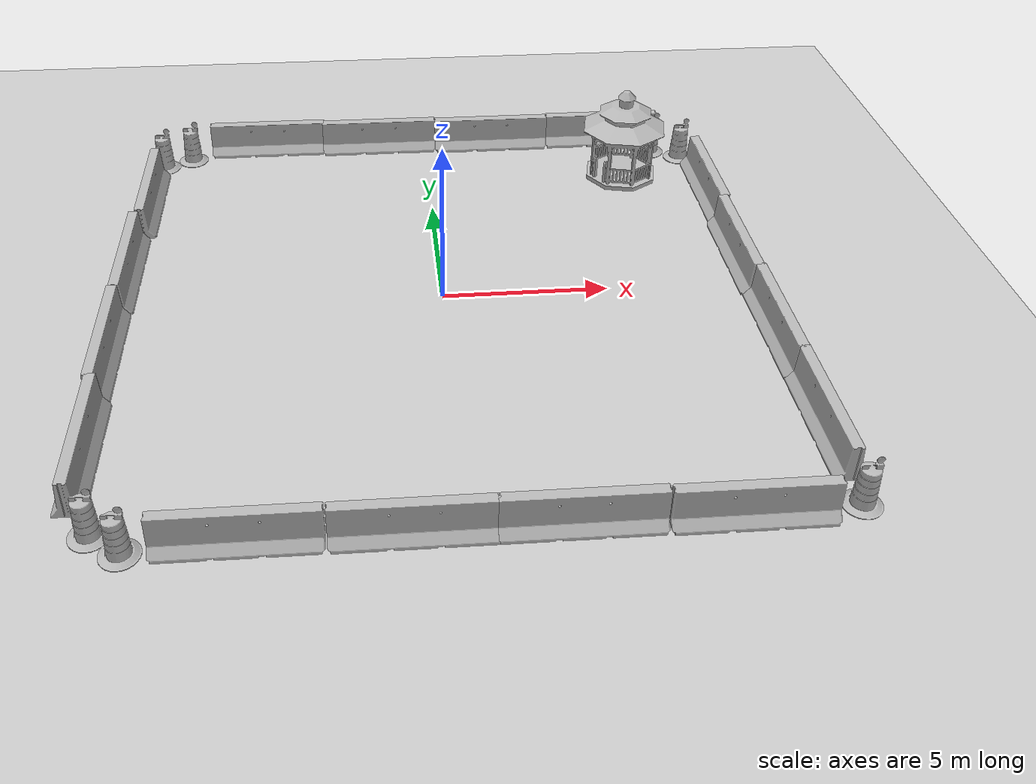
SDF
<sdf version="1.7">
 <world name="default">
  <light name="sun" type="directional">
   <pose>0 0 10 0 -0 0</pose>
   <diffuse>0.8 0.8 0.8 1</diffuse>
   <specular>0.2 0.2 0.2 1</specular>
   <attenuation>
    <range>1000</range>
    <constant>0.9</constant>
    <linear>0.01</linear>
    <quadratic>0.001</quadratic>
   </attenuation>
   <direction>-0.5 0.1 -0.9</direction>
   <spot><inner_angle>0</inner_angle><outer_angle>0</outer_angle><falloff>0</falloff></spot>
  </light>
  <model name="ground_plane">
   <static>1</static>
   <link name="link">
    <collision name="collision">
     <geometry><plane><normal>0 0 1</normal><size>100 100</size></plane></geometry>
     <surface><friction><ode><mu>100</mu><mu2>50</mu2></ode></friction></surface>
    </collision>
    <visual name="visual">
     <cast_shadows>0</cast_shadows>
     <geometry><plane><normal>0 0 1</normal><size>100 100</size></plane></geometry>
     <material>
      <script><uri>file://media/materials/scripts/gazebo.material</uri><name>Gazebo/Grey</name></script>
     </material>
    </visual>
   </link>
  </model>
  <gravity>0 0 -9.8</gravity>
  <magnetic_field>6e-06 2.3e-05 -4.2e-05</magnetic_field>
  <atmosphere type="adiabatic"/>
  <physics name="default_physics" default="0" type="ode">
   <max_step_size>0.001</max_step_size>
   <real_time_factor>1</real_time_factor>
   <real_time_update_rate>1000</real_time_update_rate>
  </physics>
  <scene><ambient>0.4 0.4 0.4 1</ambient><background>0.7 0.7 0.7 1</background><shadows>1</shadows></scene>
  <spherical_coordinates>
   <surface_model>EARTH_WGS84</surface_model>
   <latitude_deg>0</latitude_deg>
   <longitude_deg>0</longitude_deg>
   <elevation>0</elevation>
   <heading_deg>0</heading_deg>
  </spherical_coordinates>
  <model name="jersey_barrier">
   <static>1</static>
   <link name="link">
    <visual name="visual">
     <geometry><mesh><uri>model://jersey_barrier/meshes/jersey_barrier.dae</uri></mesh></geometry>
    </visual>
    <collision name="upright">
     <pose>0 0 0.5715 0 -0 0</pose>
     <geometry><box><size>4.06542 0.3063 1.143</size></box></geometry>
    </collision>
    <collision name="base">
     <pose>0 0 0.032258 0 -0 0</pose>
     <geometry><box><size>4.06542 0.8107 0.064516</size></box></geometry>
    </collision>
    <collision name="base2">
     <pose>0 0 0.1 0 -0 0</pose>
     <geometry><box><size>4.06542 0.65 0.1</size></box></geometry>
    </collision>
    <collision name="base3">
     <pose>0 0 0.2 0 -0 0</pose>
     <geometry><box><size>4.06542 0.5 0.1</size></box></geometry>
    </collision>
    <collision name="left-angle">
     <pose>0 -0.224 0.2401 0.9 -0 0</pose>
     <geometry><box><size>4.06542 0.5 0.064516</size></box></geometry>
    </collision>
    <collision name="right-angle">
     <pose>0 0.224 0.2401 -0.9 0 0</pose>
     <geometry><box><size>4.06542 0.5 0.064516</size></box></geometry>
    </collision>
   </link>
   <pose>-5.65677 9.4608 0 0 -0 0</pose>
  </model>
  <model name="jersey_barrier_clone">
   <static>1</static>
   <link name="link">
    <visual name="visual">
     <geometry><mesh><uri>model://jersey_barrier/meshes/jersey_barrier.dae</uri></mesh></geometry>
    </visual>
    <collision name="upright">
     <pose>0 0 0.5715 0 -0 0</pose>
     <geometry><box><size>4.06542 0.3063 1.143</size></box></geometry>
    </collision>
    <collision name="base">
     <pose>0 0 0.032258 0 -0 0</pose>
     <geometry><box><size>4.06542 0.8107 0.064516</size></box></geometry>
    </collision>
    <collision name="base2">
     <pose>0 0 0.1 0 -0 0</pose>
     <geometry><box><size>4.06542 0.65 0.1</size></box></geometry>
    </collision>
    <collision name="base3">
     <pose>0 0 0.2 0 -0 0</pose>
     <geometry><box><size>4.06542 0.5 0.1</size></box></geometry>
    </collision>
    <collision name="left-angle">
     <pose>0 -0.224 0.2401 0.9 -0 0</pose>
     <geometry><box><size>4.06542 0.5 0.064516</size></box></geometry>
    </collision>
    <collision name="right-angle">
     <pose>0 0.224 0.2401 -0.9 0 0</pose>
     <geometry><box><size>4.06542 0.5 0.064516</size></box></geometry>
    </collision>
   </link>
   <pose>-1.65987 9.36075 0 0 -0 0</pose>
  </model>
  <model name="jersey_barrier_clone_0">
   <static>1</static>
   <link name="link">
    <visual name="visual">
     <geometry><mesh><uri>model://jersey_barrier/meshes/jersey_barrier.dae</uri></mesh></geometry>
    </visual>
    <collision name="upright">
     <pose>0 0 0.5715 0 -0 0</pose>
     <geometry><box><size>4.06542 0.3063 1.143</size></box></geometry>
    </collision>
    <collision name="base">
     <pose>0 0 0.032258 0 -0 0</pose>
     <geometry><box><size>4.06542 0.8107 0.064516</size></box></geometry>
    </collision>
    <collision name="base2">
     <pose>0 0 0.1 0 -0 0</pose>
     <geometry><box><size>4.06542 0.65 0.1</size></box></geometry>
    </collision>
    <collision name="base3">
     <pose>0 0 0.2 0 -0 0</pose>
     <geometry><box><size>4.06542 0.5 0.1</size></box></geometry>
    </collision>
    <collision name="left-angle">
     <pose>0 -0.224 0.2401 0.9 -0 0</pose>
     <geometry><box><size>4.06542 0.5 0.064516</size></box></geometry>
    </collision>
    <collision name="right-angle">
     <pose>0 0.224 0.2401 -0.9 0 0</pose>
     <geometry><box><size>4.06542 0.5 0.064516</size></box></geometry>
    </collision>
   </link>
   <pose>2.39773 9.29085 0 0 -0 0</pose>
  </model>
  <model name="jersey_barrier_clone_1">
   <static>1</static>
   <link name="link">
    <visual name="visual">
     <geometry><mesh><uri>model://jersey_barrier/meshes/jersey_barrier.dae</uri></mesh></geometry>
    </visual>
    <collision name="upright">
     <pose>0 0 0.5715 0 -0 0</pose>
     <geometry><box><size>4.06542 0.3063 1.143</size></box></geometry>
    </collision>
    <collision name="base">
     <pose>0 0 0.032258 0 -0 0</pose>
     <geometry><box><size>4.06542 0.8107 0.064516</size></box></geometry>
    </collision>
    <collision name="base2">
     <pose>0 0 0.1 0 -0 0</pose>
     <geometry><box><size>4.06542 0.65 0.1</size></box></geometry>
    </collision>
    <collision name="base3">
     <pose>0 0 0.2 0 -0 0</pose>
     <geometry><box><size>4.06542 0.5 0.1</size></box></geometry>
    </collision>
    <collision name="left-angle">
     <pose>0 -0.224 0.2401 0.9 -0 0</pose>
     <geometry><box><size>4.06542 0.5 0.064516</size></box></geometry>
    </collision>
    <collision name="right-angle">
     <pose>0 0.224 0.2401 -0.9 0 0</pose>
     <geometry><box><size>4.06542 0.5 0.064516</size></box></geometry>
    </collision>
   </link>
   <pose>6.45464 9.33993 0 0 -0 0</pose>
  </model>
  <model name="jersey_barrier_clone_3">
   <static>1</static>
   <link name="link">
    <visual name="visual">
     <geometry><mesh><uri>model://jersey_barrier/meshes/jersey_barrier.dae</uri></mesh></geometry>
    </visual>
    <collision name="upright">
     <pose>0 0 0.5715 0 -0 0</pose>
     <geometry><box><size>4.06542 0.3063 1.143</size></box></geometry>
    </collision>
    <collision name="base">
     <pose>0 0 0.032258 0 -0 0</pose>
     <geometry><box><size>4.06542 0.8107 0.064516</size></box></geometry>
    </collision>
    <collision name="base2">
     <pose>0 0 0.1 0 -0 0</pose>
     <geometry><box><size>4.06542 0.65 0.1</size></box></geometry>
    </collision>
    <collision name="base3">
     <pose>0 0 0.2 0 -0 0</pose>
     <geometry><box><size>4.06542 0.5 0.1</size></box></geometry>
    </collision>
    <collision name="left-angle">
     <pose>0 -0.224 0.2401 0.9 -0 0</pose>
     <geometry><box><size>4.06542 0.5 0.064516</size></box></geometry>
    </collision>
    <collision name="right-angle">
     <pose>0 0.224 0.2401 -0.9 0 0</pose>
     <geometry><box><size>4.06542 0.5 0.064516</size></box></geometry>
    </collision>
   </link>
   <pose>9.44656 5.35522 0 0 0 -1.56865</pose>
  </model>
  <model name="jersey_barrier_clone_3_clone">
   <static>1</static>
   <link name="link">
    <visual name="visual">
     <geometry><mesh><uri>model://jersey_barrier/meshes/jersey_barrier.dae</uri></mesh></geometry>
    </visual>
    <collision name="upright">
     <pose>0 0 0.5715 0 -0 0</pose>
     <geometry><box><size>4.06542 0.3063 1.143</size></box></geometry>
    </collision>
    <collision name="base">
     <pose>0 0 0.032258 0 -0 0</pose>
     <geometry><box><size>4.06542 0.8107 0.064516</size></box></geometry>
    </collision>
    <collision name="base2">
     <pose>0 0 0.1 0 -0 0</pose>
     <geometry><box><size>4.06542 0.65 0.1</size></box></geometry>
    </collision>
    <collision name="base3">
     <pose>0 0 0.2 0 -0 0</pose>
     <geometry><box><size>4.06542 0.5 0.1</size></box></geometry>
    </collision>
    <collision name="left-angle">
     <pose>0 -0.224 0.2401 0.9 -0 0</pose>
     <geometry><box><size>4.06542 0.5 0.064516</size></box></geometry>
    </collision>
    <collision name="right-angle">
     <pose>0 0.224 0.2401 -0.9 0 0</pose>
     <geometry><box><size>4.06542 0.5 0.064516</size></box></geometry>
    </collision>
   </link>
   <pose>9.3727 1.33119 0 0 0 -1.56865</pose>
  </model>
  <model name="jersey_barrier_clone_3_clone_0">
   <static>1</static>
   <link name="link">
    <visual name="visual">
     <geometry><mesh><uri>model://jersey_barrier/meshes/jersey_barrier.dae</uri></mesh></geometry>
    </visual>
    <collision name="upright">
     <pose>0 0 0.5715 0 -0 0</pose>
     <geometry><box><size>4.06542 0.3063 1.143</size></box></geometry>
    </collision>
    <collision name="base">
     <pose>0 0 0.032258 0 -0 0</pose>
     <geometry><box><size>4.06542 0.8107 0.064516</size></box></geometry>
    </collision>
    <collision name="base2">
     <pose>0 0 0.1 0 -0 0</pose>
     <geometry><box><size>4.06542 0.65 0.1</size></box></geometry>
    </collision>
    <collision name="base3">
     <pose>0 0 0.2 0 -0 0</pose>
     <geometry><box><size>4.06542 0.5 0.1</size></box></geometry>
    </collision>
    <collision name="left-angle">
     <pose>0 -0.224 0.2401 0.9 -0 0</pose>
     <geometry><box><size>4.06542 0.5 0.064516</size></box></geometry>
    </collision>
    <collision name="right-angle">
     <pose>0 0.224 0.2401 -0.9 0 0</pose>
     <geometry><box><size>4.06542 0.5 0.064516</size></box></geometry>
    </collision>
   </link>
   <pose>9.4315 -2.6268 0 0 0 -1.56865</pose>
  </model>
  <model name="jersey_barrier_clone_3_clone_1">
   <static>1</static>
   <link name="link">
    <visual name="visual">
     <geometry><mesh><uri>model://jersey_barrier/meshes/jersey_barrier.dae</uri></mesh></geometry>
    </visual>
    <collision name="upright">
     <pose>0 0 0.5715 0 -0 0</pose>
     <geometry><box><size>4.06542 0.3063 1.143</size></box></geometry>
    </collision>
    <collision name="base">
     <pose>0 0 0.032258 0 -0 0</pose>
     <geometry><box><size>4.06542 0.8107 0.064516</size></box></geometry>
    </collision>
    <collision name="base2">
     <pose>0 0 0.1 0 -0 0</pose>
     <geometry><box><size>4.06542 0.65 0.1</size></box></geometry>
    </collision>
    <collision name="base3">
     <pose>0 0 0.2 0 -0 0</pose>
     <geometry><box><size>4.06542 0.5 0.1</size></box></geometry>
    </collision>
    <collision name="left-angle">
     <pose>0 -0.224 0.2401 0.9 -0 0</pose>
     <geometry><box><size>4.06542 0.5 0.064516</size></box></geometry>
    </collision>
    <collision name="right-angle">
     <pose>0 0.224 0.2401 -0.9 0 0</pose>
     <geometry><box><size>4.06542 0.5 0.064516</size></box></geometry>
    </collision>
   </link>
   <pose>9.44969 -6.53485 0 0 0 -1.56865</pose>
  </model>
  <model name="jersey_barrier_clone_2_clone">
   <static>1</static>
   <link name="link">
    <visual name="visual">
     <geometry><mesh><uri>model://jersey_barrier/meshes/jersey_barrier.dae</uri></mesh></geometry>
    </visual>
    <collision name="upright">
     <pose>0 0 0.5715 0 -0 0</pose>
     <geometry><box><size>4.06542 0.3063 1.143</size></box></geometry>
    </collision>
    <collision name="base">
     <pose>0 0 0.032258 0 -0 0</pose>
     <geometry><box><size>4.06542 0.8107 0.064516</size></box></geometry>
    </collision>
    <collision name="base2">
     <pose>0 0 0.1 0 -0 0</pose>
     <geometry><box><size>4.06542 0.65 0.1</size></box></geometry>
    </collision>
    <collision name="base3">
     <pose>0 0 0.2 0 -0 0</pose>
     <geometry><box><size>4.06542 0.5 0.1</size></box></geometry>
    </collision>
    <collision name="left-angle">
     <pose>0 -0.224 0.2401 0.9 -0 0</pose>
     <geometry><box><size>4.06542 0.5 0.064516</size></box></geometry>
    </collision>
    <collision name="right-angle">
     <pose>0 0.224 0.2401 -0.9 0 0</pose>
     <geometry><box><size>4.06542 0.5 0.064516</size></box></geometry>
    </collision>
   </link>
   <pose>6.70657 -9.54347 0 0 -0 0</pose>
  </model>
  <model name="jersey_barrier_clone_2_clone_0">
   <static>1</static>
   <link name="link">
    <visual name="visual">
     <geometry><mesh><uri>model://jersey_barrier/meshes/jersey_barrier.dae</uri></mesh></geometry>
    </visual>
    <collision name="upright">
     <pose>0 0 0.5715 0 -0 0</pose>
     <geometry><box><size>4.06542 0.3063 1.143</size></box></geometry>
    </collision>
    <collision name="base">
     <pose>0 0 0.032258 0 -0 0</pose>
     <geometry><box><size>4.06542 0.8107 0.064516</size></box></geometry>
    </collision>
    <collision name="base2">
     <pose>0 0 0.1 0 -0 0</pose>
     <geometry><box><size>4.06542 0.65 0.1</size></box></geometry>
    </collision>
    <collision name="base3">
     <pose>0 0 0.2 0 -0 0</pose>
     <geometry><box><size>4.06542 0.5 0.1</size></box></geometry>
    </collision>
    <collision name="left-angle">
     <pose>0 -0.224 0.2401 0.9 -0 0</pose>
     <geometry><box><size>4.06542 0.5 0.064516</size></box></geometry>
    </collision>
    <collision name="right-angle">
     <pose>0 0.224 0.2401 -0.9 0 0</pose>
     <geometry><box><size>4.06542 0.5 0.064516</size></box></geometry>
    </collision>
   </link>
   <pose>2.59616 -9.50928 0 0 -0 0</pose>
  </model>
  <model name="jersey_barrier_clone_2_clone_1">
   <static>1</static>
   <link name="link">
    <visual name="visual">
     <geometry><mesh><uri>model://jersey_barrier/meshes/jersey_barrier.dae</uri></mesh></geometry>
    </visual>
    <collision name="upright">
     <pose>0 0 0.5715 0 -0 0</pose>
     <geometry><box><size>4.06542 0.3063 1.143</size></box></geometry>
    </collision>
    <collision name="base">
     <pose>0 0 0.032258 0 -0 0</pose>
     <geometry><box><size>4.06542 0.8107 0.064516</size></box></geometry>
    </collision>
    <collision name="base2">
     <pose>0 0 0.1 0 -0 0</pose>
     <geometry><box><size>4.06542 0.65 0.1</size></box></geometry>
    </collision>
    <collision name="base3">
     <pose>0 0 0.2 0 -0 0</pose>
     <geometry><box><size>4.06542 0.5 0.1</size></box></geometry>
    </collision>
    <collision name="left-angle">
     <pose>0 -0.224 0.2401 0.9 -0 0</pose>
     <geometry><box><size>4.06542 0.5 0.064516</size></box></geometry>
    </collision>
    <collision name="right-angle">
     <pose>0 0.224 0.2401 -0.9 0 0</pose>
     <geometry><box><size>4.06542 0.5 0.064516</size></box></geometry>
    </collision>
   </link>
   <pose>-1.33414 -9.50852 0 0 -0 0</pose>
  </model>
  <model name="jersey_barrier_clone_2_clone_2">
   <static>1</static>
   <link name="link">
    <visual name="visual">
     <geometry><mesh><uri>model://jersey_barrier/meshes/jersey_barrier.dae</uri></mesh></geometry>
    </visual>
    <collision name="upright">
     <pose>0 0 0.5715 0 -0 0</pose>
     <geometry><box><size>4.06542 0.3063 1.143</size></box></geometry>
    </collision>
    <collision name="base">
     <pose>0 0 0.032258 0 -0 0</pose>
     <geometry><box><size>4.06542 0.8107 0.064516</size></box></geometry>
    </collision>
    <collision name="base2">
     <pose>0 0 0.1 0 -0 0</pose>
     <geometry><box><size>4.06542 0.65 0.1</size></box></geometry>
    </collision>
    <collision name="base3">
     <pose>0 0 0.2 0 -0 0</pose>
     <geometry><box><size>4.06542 0.5 0.1</size></box></geometry>
    </collision>
    <collision name="left-angle">
     <pose>0 -0.224 0.2401 0.9 -0 0</pose>
     <geometry><box><size>4.06542 0.5 0.064516</size></box></geometry>
    </collision>
    <collision name="right-angle">
     <pose>0 0.224 0.2401 -0.9 0 0</pose>
     <geometry><box><size>4.06542 0.5 0.064516</size></box></geometry>
    </collision>
   </link>
   <pose>-5.44605 -9.49634 0 0 -0 0</pose>
  </model>
  <model name="jersey_barrier_clone_3_clone_1_clone">
   <static>1</static>
   <link name="link">
    <visual name="visual">
     <geometry><mesh><uri>model://jersey_barrier/meshes/jersey_barrier.dae</uri></mesh></geometry>
    </visual>
    <collision name="upright">
     <pose>0 0 0.5715 0 -0 0</pose>
     <geometry><box><size>4.06542 0.3063 1.143</size></box></geometry>
    </collision>
    <collision name="base">
     <pose>0 0 0.032258 0 -0 0</pose>
     <geometry><box><size>4.06542 0.8107 0.064516</size></box></geometry>
    </collision>
    <collision name="base2">
     <pose>0 0 0.1 0 -0 0</pose>
     <geometry><box><size>4.06542 0.65 0.1</size></box></geometry>
    </collision>
    <collision name="base3">
     <pose>0 0 0.2 0 -0 0</pose>
     <geometry><box><size>4.06542 0.5 0.1</size></box></geometry>
    </collision>
    <collision name="left-angle">
     <pose>0 -0.224 0.2401 0.9 -0 0</pose>
     <geometry><box><size>4.06542 0.5 0.064516</size></box></geometry>
    </collision>
    <collision name="right-angle">
     <pose>0 0.224 0.2401 -0.9 0 0</pose>
     <geometry><box><size>4.06542 0.5 0.064516</size></box></geometry>
    </collision>
   </link>
   <pose>-9.54289 -6.33149 0 0 0 -1.56865</pose>
  </model>
  <model name="jersey_barrier_clone_3_clone_1_clone_0">
   <static>1</static>
   <link name="link">
    <visual name="visual">
     <geometry><mesh><uri>model://jersey_barrier/meshes/jersey_barrier.dae</uri></mesh></geometry>
    </visual>
    <collision name="upright">
     <pose>0 0 0.5715 0 -0 0</pose>
     <geometry><box><size>4.06542 0.3063 1.143</size></box></geometry>
    </collision>
    <collision name="base">
     <pose>0 0 0.032258 0 -0 0</pose>
     <geometry><box><size>4.06542 0.8107 0.064516</size></box></geometry>
    </collision>
    <collision name="base2">
     <pose>0 0 0.1 0 -0 0</pose>
     <geometry><box><size>4.06542 0.65 0.1</size></box></geometry>
    </collision>
    <collision name="base3">
     <pose>0 0 0.2 0 -0 0</pose>
     <geometry><box><size>4.06542 0.5 0.1</size></box></geometry>
    </collision>
    <collision name="left-angle">
     <pose>0 -0.224 0.2401 0.9 -0 0</pose>
     <geometry><box><size>4.06542 0.5 0.064516</size></box></geometry>
    </collision>
    <collision name="right-angle">
     <pose>0 0.224 0.2401 -0.9 0 0</pose>
     <geometry><box><size>4.06542 0.5 0.064516</size></box></geometry>
    </collision>
   </link>
   <pose>-9.6221 -2.35336 0 0 0 -1.56865</pose>
  </model>
  <model name="jersey_barrier_clone_3_clone_1_clone_1">
   <static>1</static>
   <link name="link">
    <visual name="visual">
     <geometry><mesh><uri>model://jersey_barrier/meshes/jersey_barrier.dae</uri></mesh></geometry>
    </visual>
    <collision name="upright">
     <pose>0 0 0.5715 0 -0 0</pose>
     <geometry><box><size>4.06542 0.3063 1.143</size></box></geometry>
    </collision>
    <collision name="base">
     <pose>0 0 0.032258 0 -0 0</pose>
     <geometry><box><size>4.06542 0.8107 0.064516</size></box></geometry>
    </collision>
    <collision name="base2">
     <pose>0 0 0.1 0 -0 0</pose>
     <geometry><box><size>4.06542 0.65 0.1</size></box></geometry>
    </collision>
    <collision name="base3">
     <pose>0 0 0.2 0 -0 0</pose>
     <geometry><box><size>4.06542 0.5 0.1</size></box></geometry>
    </collision>
    <collision name="left-angle">
     <pose>0 -0.224 0.2401 0.9 -0 0</pose>
     <geometry><box><size>4.06542 0.5 0.064516</size></box></geometry>
    </collision>
    <collision name="right-angle">
     <pose>0 0.224 0.2401 -0.9 0 0</pose>
     <geometry><box><size>4.06542 0.5 0.064516</size></box></geometry>
    </collision>
   </link>
   <pose>-9.58952 1.69745 0 0 0 -1.56865</pose>
  </model>
  <model name="jersey_barrier_clone_3_clone_1_clone_2">
   <static>1</static>
   <link name="link">
    <visual name="visual">
     <geometry><mesh><uri>model://jersey_barrier/meshes/jersey_barrier.dae</uri></mesh></geometry>
    </visual>
    <collision name="upright">
     <pose>0 0 0.5715 0 -0 0</pose>
     <geometry><box><size>4.06542 0.3063 1.143</size></box></geometry>
    </collision>
    <collision name="base">
     <pose>0 0 0.032258 0 -0 0</pose>
     <geometry><box><size>4.06542 0.8107 0.064516</size></box></geometry>
    </collision>
    <collision name="base2">
     <pose>0 0 0.1 0 -0 0</pose>
     <geometry><box><size>4.06542 0.65 0.1</size></box></geometry>
    </collision>
    <collision name="base3">
     <pose>0 0 0.2 0 -0 0</pose>
     <geometry><box><size>4.06542 0.5 0.1</size></box></geometry>
    </collision>
    <collision name="left-angle">
     <pose>0 -0.224 0.2401 0.9 -0 0</pose>
     <geometry><box><size>4.06542 0.5 0.064516</size></box></geometry>
    </collision>
    <collision name="right-angle">
     <pose>0 0.224 0.2401 -0.9 0 0</pose>
     <geometry><box><size>4.06542 0.5 0.064516</size></box></geometry>
    </collision>
   </link>
   <pose>-9.44715 5.83721 0 0 0 -1.56865</pose>
  </model>
  <model name="Construction Barrel">
   <link name="link">
    <inertial>
     <pose>0 0 0.4 0 -0 0</pose>
     <mass>500</mass>
     <inertia><ixx>51.2096</ixx><iyy>51.2096</iyy><izz>25</izz><ixy>0</ixy><ixz>0</ixz><iyz>0</iyz></inertia>
    </inertial>
    <collision name="collision">
     <geometry><mesh><uri>model://construction_barrel/meshes/construction_barrel.dae</uri></mesh></geometry>
    </collision>
    <visual name="visual">
     <geometry><mesh><uri>model://construction_barrel/meshes/construction_barrel.dae</uri></mesh></geometry>
    </visual>
   </link>
   <pose>9.07449 7.91063 -4e-06 -5e-06 -7e-06 -3.9e-05</pose>
  </model>
  <model name="Construction Barrel_0">
   <link name="link">
    <inertial>
     <pose>0 0 0.4 0 -0 0</pose>
     <mass>500</mass>
     <inertia><ixx>51.2096</ixx><iyy>51.2096</iyy><izz>25</izz><ixy>0</ixy><ixz>0</ixz><iyz>0</iyz></inertia>
    </inertial>
    <collision name="collision">
     <geometry><mesh><uri>model://construction_barrel/meshes/construction_barrel.dae</uri></mesh></geometry>
    </collision>
    <visual name="visual">
     <geometry><mesh><uri>model://construction_barrel/meshes/construction_barrel.dae</uri></mesh></geometry>
    </visual>
   </link>
   <pose>8.12834 8.41645 -1e-06 2e-06 -1e-06 -2.5e-05</pose>
  </model>
  <model name="Construction Barrel_1">
   <link name="link">
    <inertial>
     <pose>0 0 0.4 0 -0 0</pose>
     <mass>500</mass>
     <inertia><ixx>51.2096</ixx><iyy>51.2096</iyy><izz>25</izz><ixy>0</ixy><ixz>0</ixz><iyz>0</iyz></inertia>
    </inertial>
    <collision name="collision">
     <geometry><mesh><uri>model://construction_barrel/meshes/construction_barrel.dae</uri></mesh></geometry>
    </collision>
    <visual name="visual">
     <geometry><mesh><uri>model://construction_barrel/meshes/construction_barrel.dae</uri></mesh></geometry>
    </visual>
   </link>
   <pose>-9.27253 8.48399 -4e-06 -5e-06 -7e-06 -3.1e-05</pose>
  </model>
  <model name="Construction Barrel_2">
   <link name="link">
    <inertial>
     <pose>0 0 0.4 0 -0 0</pose>
     <mass>500</mass>
     <inertia><ixx>51.2096</ixx><iyy>51.2096</iyy><izz>25</izz><ixy>0</ixy><ixz>0</ixz><iyz>0</iyz></inertia>
    </inertial>
    <collision name="collision">
     <geometry><mesh><uri>model://construction_barrel/meshes/construction_barrel.dae</uri></mesh></geometry>
    </collision>
    <visual name="visual">
     <geometry><mesh><uri>model://construction_barrel/meshes/construction_barrel.dae</uri></mesh></geometry>
    </visual>
   </link>
   <pose>-8.34353 8.93862 -4e-06 -5e-06 -7e-06 -3.5e-05</pose>
  </model>
  <model name="Construction Barrel_3">
   <link name="link">
    <inertial>
     <pose>0 0 0.4 0 -0 0</pose>
     <mass>500</mass>
     <inertia><ixx>51.2096</ixx><iyy>51.2096</iyy><izz>25</izz><ixy>0</ixy><ixz>0</ixz><iyz>0</iyz></inertia>
    </inertial>
    <collision name="collision">
     <geometry><mesh><uri>model://construction_barrel/meshes/construction_barrel.dae</uri></mesh></geometry>
    </collision>
    <visual name="visual">
     <geometry><mesh><uri>model://construction_barrel/meshes/construction_barrel.dae</uri></mesh></geometry>
    </visual>
   </link>
   <pose>9.45368 -9.29425 0 0 0 -2.1e-05</pose>
  </model>
  <model name="Construction Barrel_4">
   <link name="link">
    <inertial>
     <pose>0 0 0.4 0 -0 0</pose>
     <mass>500</mass>
     <inertia><ixx>51.2096</ixx><iyy>51.2096</iyy><izz>25</izz><ixy>0</ixy><ixz>0</ixz><iyz>0</iyz></inertia>
    </inertial>
    <collision name="collision">
     <geometry><mesh><uri>model://construction_barrel/meshes/construction_barrel.dae</uri></mesh></geometry>
    </collision>
    <visual name="visual">
     <geometry><mesh><uri>model://construction_barrel/meshes/construction_barrel.dae</uri></mesh></geometry>
    </visual>
   </link>
   <pose>-8.13312 -9.57169 -1e-06 2e-06 -2e-06 -0.000444</pose>
  </model>
  <model name="Construction Barrel_5">
   <link name="link">
    <inertial>
     <pose>0 0 0.4 0 -0 0</pose>
     <mass>500</mass>
     <inertia><ixx>51.2096</ixx><iyy>51.2096</iyy><izz>25</izz><ixy>0</ixy><ixz>0</ixz><iyz>0</iyz></inertia>
    </inertial>
    <collision name="collision">
     <geometry><mesh><uri>model://construction_barrel/meshes/construction_barrel.dae</uri></mesh></geometry>
    </collision>
    <visual name="visual">
     <geometry><mesh><uri>model://construction_barrel/meshes/construction_barrel.dae</uri></mesh></geometry>
    </visual>
   </link>
   <pose>-8.9384 -8.95999 0 0 0 -0.000299</pose>
  </model>
  <model name="gazebo">
   <link name="link">
    <inertial>
     <mass>0</mass>
     <inertia><ixx>1</ixx><ixy>0</ixy><ixz>0</ixz><iyy>1</iyy><iyz>0</iyz><izz>1</izz></inertia>
    </inertial>
    <visual name="visual">
     <geometry>
      <mesh><scale>0.99826 0.99826 0.99826</scale><uri>model://gazebo/meshes/gazebo.dae</uri></mesh>
     </geometry>
     <material><shader type="pixel"><normal_map>__default__</normal_map></shader></material>
    </visual>
   </link>
   <static>1</static>
   <pose>6.75607 6.85898 0 0 0 -2.56927</pose>
  </model>
 </world>
</sdf>
